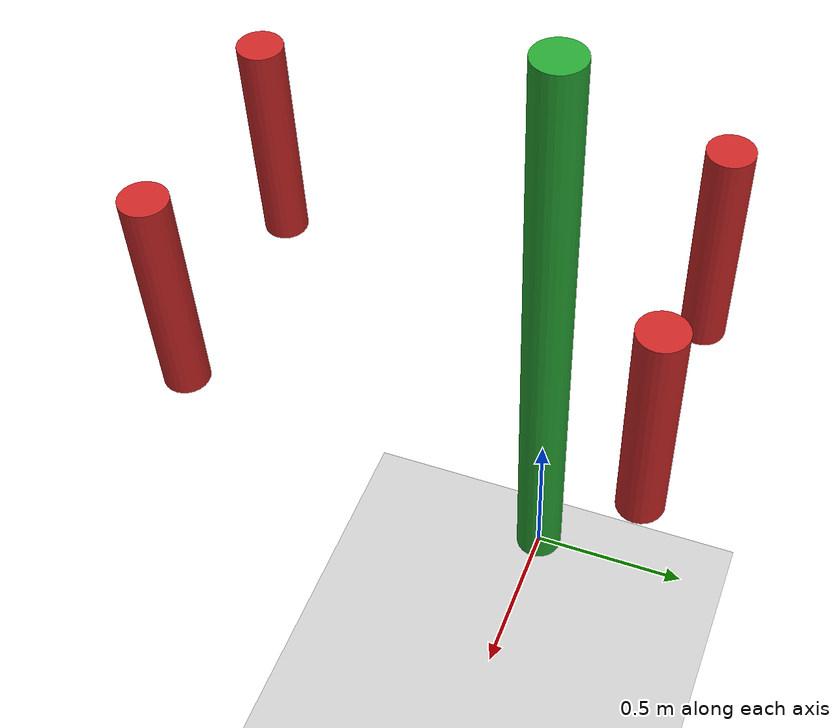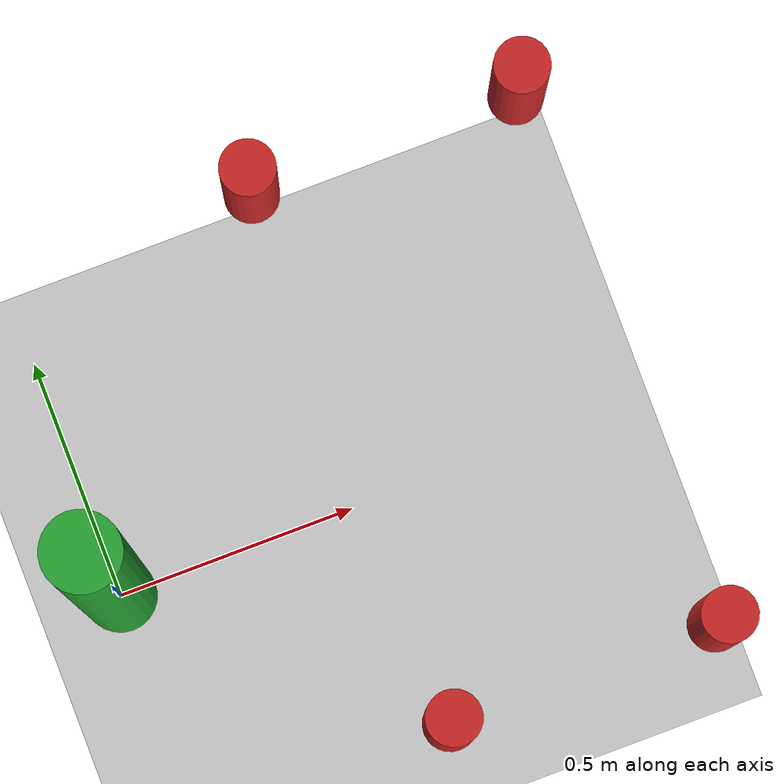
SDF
<sdf version="1.6">
 <world name="default">
  <include><uri>model://ground_plane</uri></include>
  <include><uri>model://sun</uri></include>
  <plugin name="gazebo_tutorials" filename="libhello_world_plugin.so"/>
  <model name="cylinder_base">
   <link name="link">
    <pose>0 0 1 0 -0 0</pose>
    <inertial>
     <mass>1</mass>
     <inertia><ixx>0.145833</ixx><ixy>0</ixy><ixz>0</ixz><iyy>0.145833</iyy><iyz>0</iyz><izz>0.125</izz></inertia>
    </inertial>
    <visual name="visual">
     <geometry><cylinder><radius>0.075</radius><length>2</length></cylinder></geometry>
     <material>
      <script><name>Gazebo/Green</name><uri>file://media/materials/scripts/gazebo.material</uri></script>
     </material>
    </visual>
    <collision name="collision">
     <geometry><cylinder><radius>0.1</radius><length>2</length></cylinder></geometry>
    </collision>
   </link>
   <static>1</static>
  </model>
  <model name="confined1">
   <link name="link">
    <pose>0.5 -0.5 2 0 0 0</pose>
    <inertial>
     <mass>1</mass>
     <inertia><ixx>0.145833</ixx><ixy>0</ixy><ixz>0</ixz><iyy>0.145833</iyy><iyz>0</iyz><izz>0.125</izz></inertia>
    </inertial>
    <visual name="visual">
     <geometry><cylinder><radius>0.05</radius><length>0.5</length></cylinder></geometry>
     <material>
      <script><name>Gazebo/Red</name><uri>file://media/materials/scripts/gazebo.material</uri></script>
     </material>
    </visual>
    <collision name="collision">
     <geometry><cylinder><radius>0.075</radius><length>0.5</length></cylinder></geometry>
    </collision>
   </link>
   <static>1</static>
  </model>
  <model name="confined2">
   <link name="link">
    <pose>0.5 0.5 2 0 0 0</pose>
    <inertial>
     <mass>1</mass>
     <inertia><ixx>0.145833</ixx><ixy>0</ixy><ixz>0</ixz><iyy>0.145833</iyy><iyz>0</iyz><izz>0.125</izz></inertia>
    </inertial>
    <visual name="visual">
     <geometry><cylinder><radius>0.05</radius><length>0.5</length></cylinder></geometry>
     <material>
      <script><name>Gazebo/Red</name><uri>file://media/materials/scripts/gazebo.material</uri></script>
     </material>
    </visual>
    <collision name="collision">
     <geometry><cylinder><radius>0.05</radius><length>0.5</length></cylinder></geometry>
    </collision>
   </link>
   <static>1</static>
  </model>
  <model name="confined3">
   <link name="link">
    <pose>1 -0.5 2 0 0 0</pose>
    <inertial>
     <mass>1</mass>
     <inertia><ixx>0.145833</ixx><ixy>0</ixy><ixz>0</ixz><iyy>0.145833</iyy><iyz>0</iyz><izz>0.125</izz></inertia>
    </inertial>
    <visual name="visual">
     <geometry><cylinder><radius>0.05</radius><length>0.5</length></cylinder></geometry>
     <material>
      <script><name>Gazebo/Red</name><uri>file://media/materials/scripts/gazebo.material</uri></script>
     </material>
    </visual>
    <collision name="collision">
     <geometry><cylinder><radius>0.05</radius><length>0.5</length></cylinder></geometry>
    </collision>
   </link>
   <static>1</static>
  </model>
  <model name="confined4">
   <link name="link">
    <pose>1 0.5 2 0 0 0</pose>
    <inertial>
     <mass>1</mass>
     <inertia><ixx>0.145833</ixx><ixy>0</ixy><ixz>0</ixz><iyy>0.145833</iyy><iyz>0</iyz><izz>0.125</izz></inertia>
    </inertial>
    <visual name="visual">
     <geometry><cylinder><radius>0.05</radius><length>0.5</length></cylinder></geometry>
     <material>
      <script><name>Gazebo/Red</name><uri>file://media/materials/scripts/gazebo.material</uri></script>
     </material>
    </visual>
    <collision name="collision">
     <geometry><cylinder><radius>0.05</radius><length>0.5</length></cylinder></geometry>
    </collision>
   </link>
   <static>1</static>
  </model>
 </world>
</sdf>
